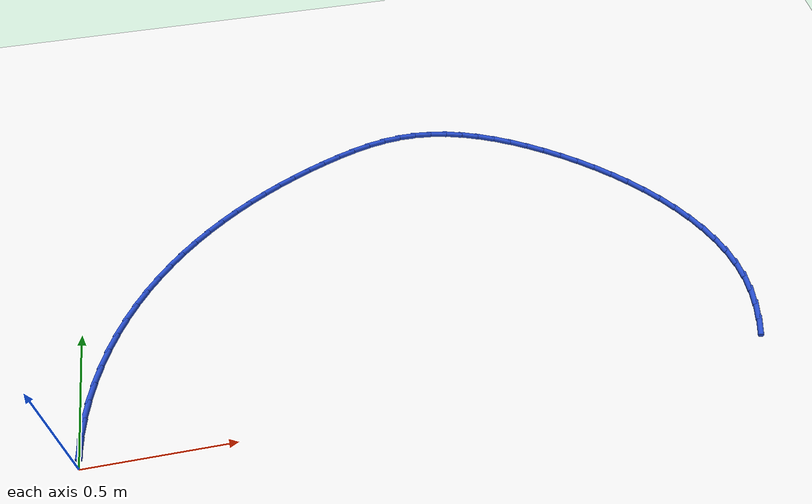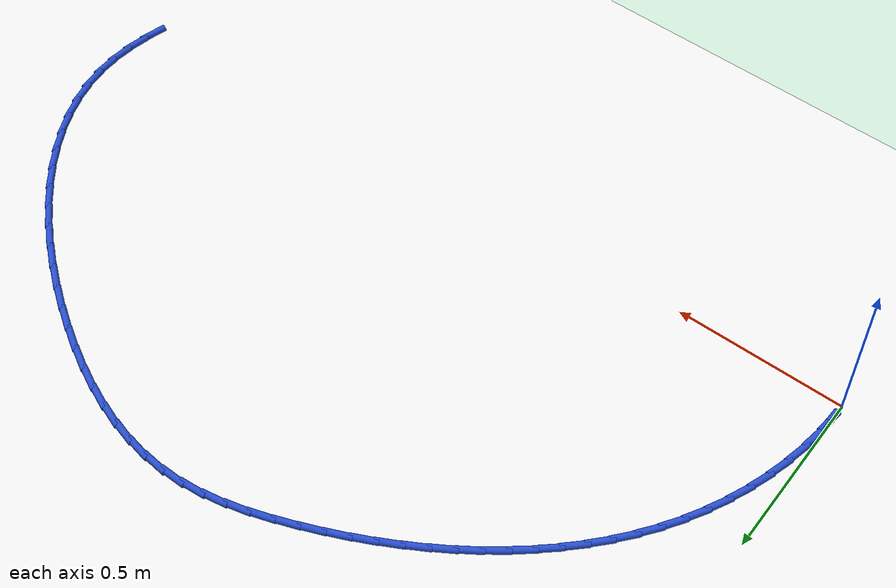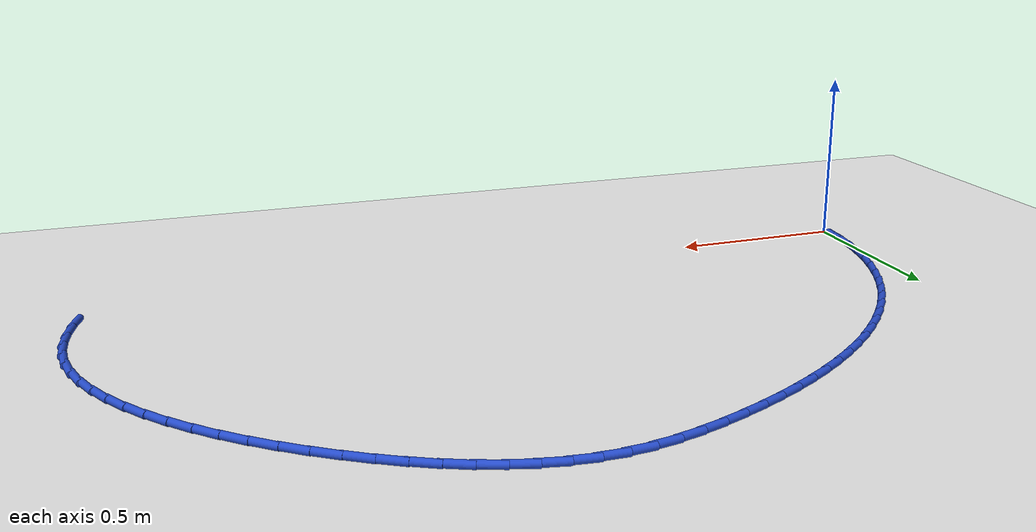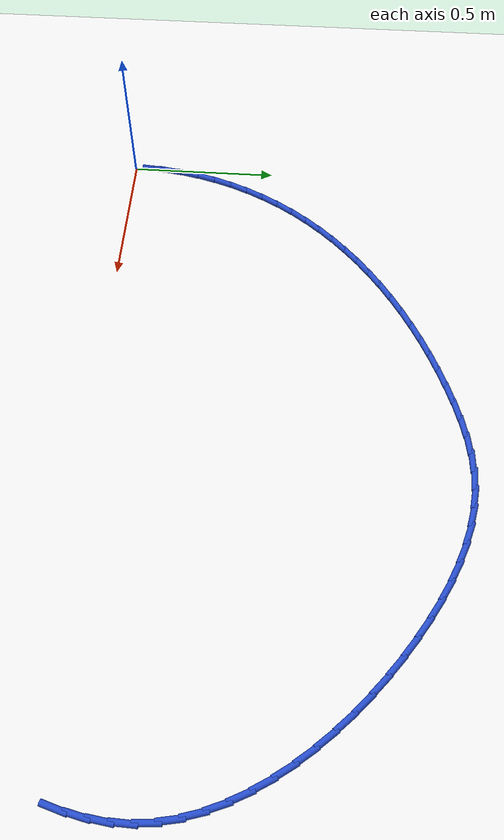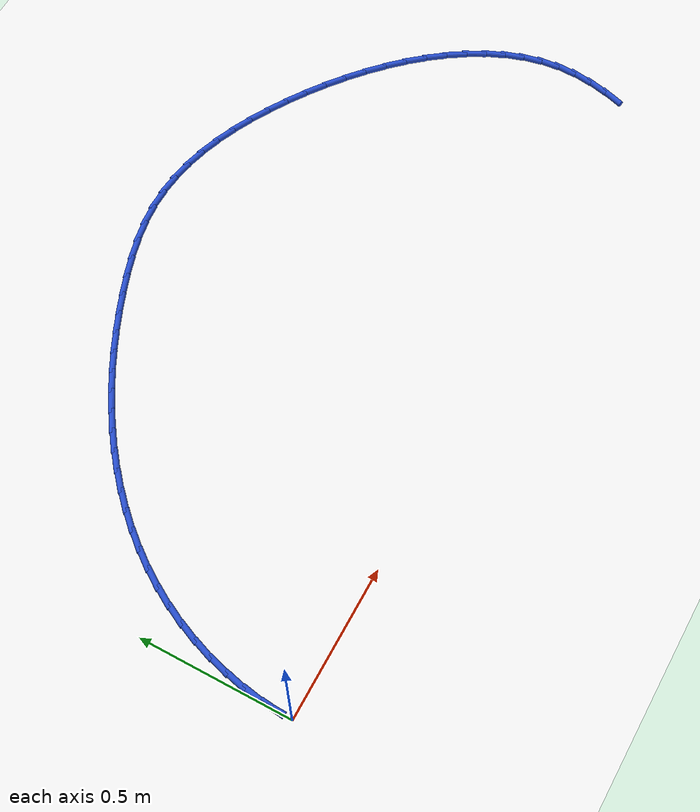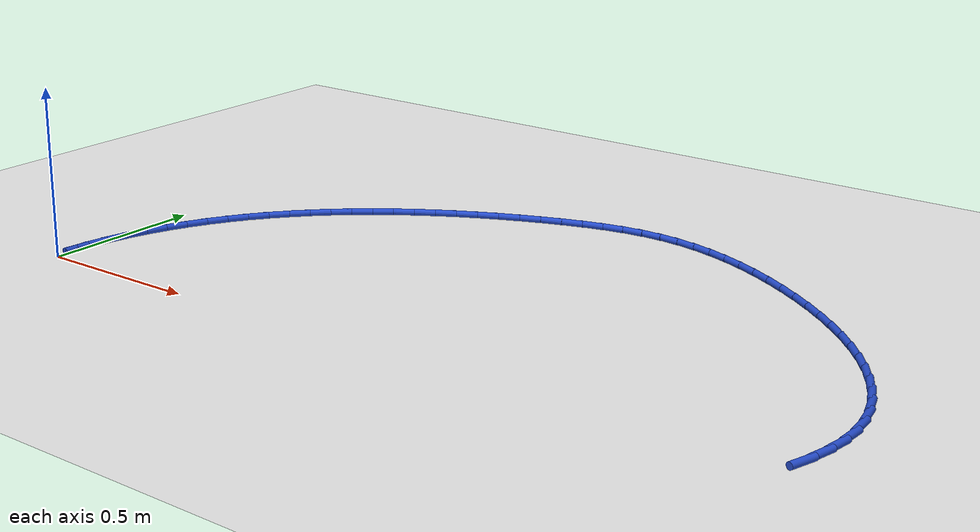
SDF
<sdf version="1.6">
 <world name="default">
  <model name="ground_plane">
   <static>1</static>
   <link name="link">
    <collision name="collision">
     <geometry><plane><normal>0 0 1</normal><size>100 100</size></plane></geometry>
     <surface><friction><ode><mu>100</mu><mu2>50</mu2></ode></friction></surface>
    </collision>
    <visual name="visual">
     <cast_shadows>0</cast_shadows>
     <geometry><plane><normal>0 0 1</normal><size>100 100</size></plane></geometry>
     <material>
      <script><uri>file://media/materials/scripts/gazebo.material</uri><name>Gazebo/WhiteGlow</name></script>
     </material>
    </visual>
   </link>
  </model>
  <model name="line">
   <link name="link_1">
    <pose>0.002664830636860857 0.06560863453543575 0.01 0 1.57 1.463603595961363</pose>
    <collision name="collision">
     <geometry><cylinder><radius>0.01</radius><length>0.08</length></cylinder></geometry>
    </collision>
    <visual name="visual">
     <material>
      <script><name>Gazebo/Blue</name><uri>file://media/materials/scripts/gazebo.material</uri></script>
     </material>
     <geometry><cylinder><radius>0.01</radius><length>0.08</length></cylinder></geometry>
    </visual>
   </link>
   <link name="link_2">
    <pose>0.009674675906237372 0.13075275635183564 0.01 0 1.57 1.3986969720841846</pose>
    <collision name="collision">
     <geometry><cylinder><radius>0.01</radius><length>0.08</length></cylinder></geometry>
    </collision>
    <visual name="visual">
     <material>
      <script><name>Gazebo/Blue</name><uri>file://media/materials/scripts/gazebo.material</uri></script>
     </material>
     <geometry><cylinder><radius>0.01</radius><length>0.08</length></cylinder></geometry>
    </visual>
   </link>
   <link name="link_3">
    <pose>0.0208782051164014 0.19520797058835296 0.01 0 1.57 1.3353134936091782</pose>
    <collision name="collision">
     <geometry><cylinder><radius>0.01</radius><length>0.08</length></cylinder></geometry>
    </collision>
    <visual name="visual">
     <material>
      <script><name>Gazebo/Blue</name><uri>file://media/materials/scripts/gazebo.material</uri></script>
     </material>
     <geometry><cylinder><radius>0.01</radius><length>0.08</length></cylinder></geometry>
    </visual>
   </link>
   <link name="link_4">
    <pose>0.036124087575624804 0.25874988238414093 0.01 0 1.57 1.2732402767615996</pose>
    <collision name="collision">
     <geometry><cylinder><radius>0.01</radius><length>0.08</length></cylinder></geometry>
    </collision>
    <visual name="visual">
     <material>
      <script><name>Gazebo/Blue</name><uri>file://media/materials/scripts/gazebo.material</uri></script>
     </material>
     <geometry><cylinder><radius>0.01</radius><length>0.08</length></cylinder></geometry>
    </visual>
   </link>
   <link name="link_5">
    <pose>0.05526099259217948 0.32115409687835267 0.01 0 1.57 1.212229603945948</pose>
    <collision name="collision">
     <geometry><cylinder><radius>0.01</radius><length>0.08</length></cylinder></geometry>
    </collision>
    <visual name="visual">
     <material>
      <script><name>Gazebo/Blue</name><uri>file://media/materials/scripts/gazebo.material</uri></script>
     </material>
     <geometry><cylinder><radius>0.01</radius><length>0.08</length></cylinder></geometry>
    </visual>
   </link>
   <link name="link_6">
    <pose>0.07813758947433724 0.3821962192101413 0.01 0 1.57 1.1520070931327182</pose>
    <collision name="collision">
     <geometry><cylinder><radius>0.01</radius><length>0.08</length></cylinder></geometry>
    </collision>
    <visual name="visual">
     <material>
      <script><name>Gazebo/Blue</name><uri>file://media/materials/scripts/gazebo.material</uri></script>
     </material>
     <geometry><cylinder><radius>0.01</radius><length>0.08</length></cylinder></geometry>
    </visual>
   </link>
   <link name="link_7">
    <pose>0.10460254753037009 0.4416518545186601 0.01 0 1.57 1.092278256634928</pose>
    <collision name="collision">
     <geometry><cylinder><radius>0.01</radius><length>0.08</length></cylinder></geometry>
    </collision>
    <visual name="visual">
     <material>
      <script><name>Gazebo/Blue</name><uri>file://media/materials/scripts/gazebo.material</uri></script>
     </material>
     <geometry><cylinder><radius>0.01</radius><length>0.08</length></cylinder></geometry>
    </visual>
   </link>
   <link name="link_8">
    <pose>0.1345045360685498 0.4992966079430623 0.01 0 1.57 1.032740196758726</pose>
    <collision name="collision">
     <geometry><cylinder><radius>0.01</radius><length>0.08</length></cylinder></geometry>
    </collision>
    <visual name="visual">
     <material>
      <script><name>Gazebo/Blue</name><uri>file://media/materials/scripts/gazebo.material</uri></script>
     </material>
     <geometry><cylinder><radius>0.01</radius><length>0.08</length></cylinder></geometry>
    </visual>
   </link>
   <link name="link_9">
    <pose>0.1676921561001764 0.5549067889270823 0.01 0 1.57 0.9738422385044967</pose>
    <collision name="collision">
     <geometry><cylinder><radius>0.01</radius><length>0.08</length></cylinder></geometry>
    </collision>
    <visual name="visual">
     <material>
      <script><name>Gazebo/Blue</name><uri>file://media/materials/scripts/gazebo.material</uri></script>
     </material>
     <geometry><cylinder><radius>0.01</radius><length>0.08</length></cylinder></geometry>
    </visual>
   </link>
   <link name="link_10">
    <pose>0.2040065282396846 0.608335847637398 0.01 0 1.57 0.9169751898087074</pose>
    <collision name="collision">
     <geometry><cylinder><radius>0.01</radius><length>0.08</length></cylinder></geometry>
    </collision>
    <visual name="visual">
     <material>
      <script><name>Gazebo/Blue</name><uri>file://media/materials/scripts/gazebo.material</uri></script>
     </material>
     <geometry><cylinder><radius>0.01</radius><length>0.08</length></cylinder></geometry>
    </visual>
   </link>
   <link name="link_11">
    <pose>0.24327464850242772 0.6595828925264681 0.01 0 1.57 0.8624230974952678</pose>
    <collision name="collision">
     <geometry><cylinder><radius>0.01</radius><length>0.08</length></cylinder></geometry>
    </collision>
    <visual name="visual">
     <material>
      <script><name>Gazebo/Blue</name><uri>file://media/materials/scripts/gazebo.material</uri></script>
     </material>
     <geometry><cylinder><radius>0.01</radius><length>0.08</length></cylinder></geometry>
    </visual>
   </link>
   <link name="link_12">
    <pose>0.28532194500066416 0.7086632008651247 0.01 0 1.57 0.8102557805259049</pose>
    <collision name="collision">
     <geometry><cylinder><radius>0.01</radius><length>0.08</length></cylinder></geometry>
    </collision>
    <visual name="visual">
     <material>
      <script><name>Gazebo/Blue</name><uri>file://media/materials/scripts/gazebo.material</uri></script>
     </material>
     <geometry><cylinder><radius>0.01</radius><length>0.08</length></cylinder></geometry>
    </visual>
   </link>
   <link name="link_13">
    <pose>0.3299738458466519 0.7555920499242 0.01 0 1.57 0.7604860261669965</pose>
    <collision name="collision">
     <geometry><cylinder><radius>0.01</radius><length>0.08</length></cylinder></geometry>
    </collision>
    <visual name="visual">
     <material>
      <script><name>Gazebo/Blue</name><uri>file://media/materials/scripts/gazebo.material</uri></script>
     </material>
     <geometry><cylinder><radius>0.01</radius><length>0.08</length></cylinder></geometry>
    </visual>
   </link>
   <link name="link_14">
    <pose>0.37705577915264915 0.800384716974526 0.01 0 1.57 0.7130791975791713</pose>
    <collision name="collision">
     <geometry><cylinder><radius>0.01</radius><length>0.08</length></cylinder></geometry>
    </collision>
    <visual name="visual">
     <material>
      <script><name>Gazebo/Blue</name><uri>file://media/materials/scripts/gazebo.material</uri></script>
     </material>
     <geometry><cylinder><radius>0.01</radius><length>0.08</length></cylinder></geometry>
    </visual>
   </link>
   <link name="link_15">
    <pose>0.4263931730309146 0.8430564792869353 0.01 0 1.57 0.6679628996554383</pose>
    <collision name="collision">
     <geometry><cylinder><radius>0.01</radius><length>0.08</length></cylinder></geometry>
    </collision>
    <visual name="visual">
     <material>
      <script><name>Gazebo/Blue</name><uri>file://media/materials/scripts/gazebo.material</uri></script>
     </material>
     <geometry><cylinder><radius>0.01</radius><length>0.08</length></cylinder></geometry>
    </visual>
   </link>
   <link name="link_16">
    <pose>0.47781145559370597 0.8836226141322594 0.01 0 1.57 0.6250359612132763</pose>
    <collision name="collision">
     <geometry><cylinder><radius>0.01</radius><length>0.08</length></cylinder></geometry>
    </collision>
    <visual name="visual">
     <material>
      <script><name>Gazebo/Blue</name><uri>file://media/materials/scripts/gazebo.material</uri></script>
     </material>
     <geometry><cylinder><radius>0.01</radius><length>0.08</length></cylinder></geometry>
    </visual>
   </link>
   <link name="link_17">
    <pose>0.5311360549532816 0.9220983987813307 0.01 0 1.57 0.5841762927654706</pose>
    <collision name="collision">
     <geometry><cylinder><radius>0.01</radius><length>0.08</length></cylinder></geometry>
    </collision>
    <visual name="visual">
     <material>
      <script><name>Gazebo/Blue</name><uri>file://media/materials/scripts/gazebo.material</uri></script>
     </material>
     <geometry><cylinder><radius>0.01</radius><length>0.08</length></cylinder></geometry>
    </visual>
   </link>
   <link name="link_18">
    <pose>0.5861923992218998 0.958499110504981 0.01 0 1.57 0.545247422198265</pose>
    <collision name="collision">
     <geometry><cylinder><radius>0.01</radius><length>0.08</length></cylinder></geometry>
    </collision>
    <visual name="visual">
     <material>
      <script><name>Gazebo/Blue</name><uri>file://media/materials/scripts/gazebo.material</uri></script>
     </material>
     <geometry><cylinder><radius>0.01</radius><length>0.08</length></cylinder></geometry>
    </visual>
   </link>
   <link name="link_19">
    <pose>0.6428059165118187 0.9928400265740428 0.01 0 1.57 0.508103683673926</pose>
    <collision name="collision">
     <geometry><cylinder><radius>0.01</radius><length>0.08</length></cylinder></geometry>
    </collision>
    <visual name="visual">
     <material>
      <script><name>Gazebo/Blue</name><uri>file://media/materials/scripts/gazebo.material</uri></script>
     </material>
     <geometry><cylinder><radius>0.01</radius><length>0.08</length></cylinder></geometry>
    </visual>
   </link>
   <link name="link_20">
    <pose>0.7008020349352966 1.025136424259348 0.01 0 1.57 0.47259414300596353</pose>
    <collision name="collision">
     <geometry><cylinder><radius>0.01</radius><length>0.08</length></cylinder></geometry>
    </collision>
    <visual name="visual">
     <material>
      <script><name>Gazebo/Blue</name><uri>file://media/materials/scripts/gazebo.material</uri></script>
     </material>
     <geometry><cylinder><radius>0.01</radius><length>0.08</length></cylinder></geometry>
    </visual>
   </link>
   <link name="link_21">
    <pose>0.7600061826045913 1.0554035808317286 0.01 0 1.57 0.4385653987040961</pose>
    <collision name="collision">
     <geometry><cylinder><radius>0.01</radius><length>0.08</length></cylinder></geometry>
    </collision>
    <visual name="visual">
     <material>
      <script><name>Gazebo/Blue</name><uri>file://media/materials/scripts/gazebo.material</uri></script>
     </material>
     <geometry><cylinder><radius>0.01</radius><length>0.08</length></cylinder></geometry>
    </visual>
   </link>
   <link name="link_22">
    <pose>0.8202437876319616 1.0836567735620168 0.01 0 1.57 0.4058634166530226</pose>
    <collision name="collision">
     <geometry><cylinder><radius>0.01</radius><length>0.08</length></cylinder></geometry>
    </collision>
    <visual name="visual">
     <material>
      <script><name>Gazebo/Blue</name><uri>file://media/materials/scripts/gazebo.material</uri></script>
     </material>
     <geometry><cylinder><radius>0.01</radius><length>0.08</length></cylinder></geometry>
    </visual>
   </link>
   <link name="link_23">
    <pose>0.8813402781296653 1.1099112797210444 0.01 0 1.57 0.3743006564137442</pose>
    <collision name="collision">
     <geometry><cylinder><radius>0.01</radius><length>0.08</length></cylinder></geometry>
    </collision>
    <visual name="visual">
     <material>
      <script><name>Gazebo/Blue</name><uri>file://media/materials/scripts/gazebo.material</uri></script>
     </material>
     <geometry><cylinder><radius>0.01</radius><length>0.08</length></cylinder></geometry>
    </visual>
   </link>
   <link name="link_24">
    <pose>0.9431211560798088 1.134179988401863 0.01 0 1.57 0.3397028711412814</pose>
    <collision name="collision">
     <geometry><cylinder><radius>0.01</radius><length>0.08</length></cylinder></geometry>
    </collision>
    <visual name="visual">
     <material>
      <script><name>Gazebo/Blue</name><uri>file://media/materials/scripts/gazebo.material</uri></script>
     </material>
     <geometry><cylinder><radius>0.01</radius><length>0.08</length></cylinder></geometry>
    </visual>
   </link>
   <link name="link_25">
    <pose>1.0054205542940364 1.1561967579980343 0.01 0 1.57 0.29381849330018933</pose>
    <collision name="collision">
     <geometry><cylinder><radius>0.01</radius><length>0.08</length></cylinder></geometry>
    </collision>
    <visual name="visual">
     <material>
      <script><name>Gazebo/Blue</name><uri>file://media/materials/scripts/gazebo.material</uri></script>
     </material>
     <geometry><cylinder><radius>0.01</radius><length>0.08</length></cylinder></geometry>
    </visual>
   </link>
   <link name="link_26">
    <pose>1.0680892050839985 1.175158792798517 0.01 0 1.57 0.23479085339214625</pose>
    <collision name="collision">
     <geometry><cylinder><radius>0.01</radius><length>0.08</length></cylinder></geometry>
    </collision>
    <visual name="visual">
     <material>
      <script><name>Gazebo/Blue</name><uri>file://media/materials/scripts/gazebo.material</uri></script>
     </material>
     <geometry><cylinder><radius>0.01</radius><length>0.08</length></cylinder></geometry>
    </visual>
   </link>
   <link name="link_27">
    <pose>1.1309797254043743 1.1902023674608235 0.01 0 1.57 0.16154950066454868</pose>
    <collision name="collision">
     <geometry><cylinder><radius>0.01</radius><length>0.08</length></cylinder></geometry>
    </collision>
    <visual name="visual">
     <material>
      <script><name>Gazebo/Blue</name><uri>file://media/materials/scripts/gazebo.material</uri></script>
     </material>
     <geometry><cylinder><radius>0.01</radius><length>0.08</length></cylinder></geometry>
    </visual>
   </link>
   <link name="link_28">
    <pose>1.193944732209844 1.2004637566424667 0.01 0 1.57 0.07326645775920984</pose>
    <collision name="collision">
     <geometry><cylinder><radius>0.01</radius><length>0.08</length></cylinder></geometry>
    </collision>
    <visual name="visual">
     <material>
      <script><name>Gazebo/Blue</name><uri>file://media/materials/scripts/gazebo.material</uri></script>
     </material>
     <geometry><cylinder><radius>0.01</radius><length>0.08</length></cylinder></geometry>
    </visual>
   </link>
   <link name="link_29">
    <pose>1.256836892765767 1.2050799052128676 0.01 0 1.57 -0.025104043558374714</pose>
    <collision name="collision">
     <geometry><cylinder><radius>0.01</radius><length>0.08</length></cylinder></geometry>
    </collision>
    <visual name="visual">
     <material>
      <script><name>Gazebo/Blue</name><uri>file://media/materials/scripts/gazebo.material</uri></script>
     </material>
     <geometry><cylinder><radius>0.01</radius><length>0.08</length></cylinder></geometry>
    </visual>
   </link>
   <link name="link_30">
    <pose>1.3195327378726525 1.2035056552682184 0.01 0 1.57 -0.11930310190052369</pose>
    <collision name="collision">
     <geometry><cylinder><radius>0.01</radius><length>0.08</length></cylinder></geometry>
    </collision>
    <visual name="visual">
     <material>
      <script><name>Gazebo/Blue</name><uri>file://media/materials/scripts/gazebo.material</uri></script>
     </material>
     <geometry><cylinder><radius>0.01</radius><length>0.08</length></cylinder></geometry>
    </visual>
   </link>
   <link name="link_31">
    <pose>1.3819707445831908 1.1960210636791644 0.01 0 1.57 -0.20600093775272743</pose>
    <collision name="collision">
     <geometry><cylinder><radius>0.01</radius><length>0.08</length></cylinder></geometry>
    </collision>
    <visual name="visual">
     <material>
      <script><name>Gazebo/Blue</name><uri>file://media/materials/scripts/gazebo.material</uri></script>
     </material>
     <geometry><cylinder><radius>0.01</radius><length>0.08</length></cylinder></geometry>
    </visual>
   </link>
   <link name="link_32">
    <pose>1.4440993111774065 1.1830383525900918 0.01 0 1.57 -0.28458591008200207</pose>
    <collision name="collision">
     <geometry><cylinder><radius>0.01</radius><length>0.08</length></cylinder></geometry>
    </collision>
    <visual name="visual">
     <material>
      <script><name>Gazebo/Blue</name><uri>file://media/materials/scripts/gazebo.material</uri></script>
     </material>
     <geometry><cylinder><radius>0.01</radius><length>0.08</length></cylinder></geometry>
    </visual>
   </link>
   <link name="link_33">
    <pose>1.5058668359353233 1.1649697441453857 0.01 0 1.57 -0.3549672472721766</pose>
    <collision name="collision">
     <geometry><cylinder><radius>0.01</radius><length>0.08</length></cylinder></geometry>
    </collision>
    <visual name="visual">
     <material>
      <script><name>Gazebo/Blue</name><uri>file://media/materials/scripts/gazebo.material</uri></script>
     </material>
     <geometry><cylinder><radius>0.01</radius><length>0.08</length></cylinder></geometry>
    </visual>
   </link>
   <link name="link_34">
    <pose>1.5672217171369651 1.1422274604894318 0.01 0 1.57 -0.4174180973318234</pose>
    <collision name="collision">
     <geometry><cylinder><radius>0.01</radius><length>0.08</length></cylinder></geometry>
    </collision>
    <visual name="visual">
     <material>
      <script><name>Gazebo/Blue</name><uri>file://media/materials/scripts/gazebo.material</uri></script>
     </material>
     <geometry><cylinder><radius>0.01</radius><length>0.08</length></cylinder></geometry>
    </visual>
   </link>
   <link name="link_35">
    <pose>1.6281123530623556 1.1152237237666158 0.01 0 1.57 -0.4724278847498682</pose>
    <collision name="collision">
     <geometry><cylinder><radius>0.01</radius><length>0.08</length></cylinder></geometry>
    </collision>
    <visual name="visual">
     <material>
      <script><name>Gazebo/Blue</name><uri>file://media/materials/scripts/gazebo.material</uri></script>
     </material>
     <geometry><cylinder><radius>0.01</radius><length>0.08</length></cylinder></geometry>
    </visual>
   </link>
   <link name="link_36">
    <pose>1.6884871419915197 1.0843707561213236 0.01 0 1.57 -0.5205863037080659</pose>
    <collision name="collision">
     <geometry><cylinder><radius>0.01</radius><length>0.08</length></cylinder></geometry>
    </collision>
    <visual name="visual">
     <material>
      <script><name>Gazebo/Blue</name><uri>file://media/materials/scripts/gazebo.material</uri></script>
     </material>
     <geometry><cylinder><radius>0.01</radius><length>0.08</length></cylinder></geometry>
    </visual>
   </link>
   <link name="link_37">
    <pose>1.7482944822044801 1.0500807796979401 0.01 0 1.57 -0.5627369350321018</pose>
    <collision name="collision">
     <geometry><cylinder><radius>0.01</radius><length>0.08</length></cylinder></geometry>
    </collision>
    <visual name="visual">
     <material>
      <script><name>Gazebo/Blue</name><uri>file://media/materials/scripts/gazebo.material</uri></script>
     </material>
     <geometry><cylinder><radius>0.01</radius><length>0.08</length></cylinder></geometry>
    </visual>
   </link>
   <link name="link_38">
    <pose>1.8074668219810217 1.0127567122538395 0.01 0 1.57 -0.6027705781776781</pose>
    <collision name="collision">
     <geometry><cylinder><radius>0.01</radius><length>0.08</length></cylinder></geometry>
    </collision>
    <visual name="visual">
     <material>
      <script><name>Gazebo/Blue</name><uri>file://media/materials/scripts/gazebo.material</uri></script>
     </material>
     <geometry><cylinder><radius>0.01</radius><length>0.08</length></cylinder></geometry>
    </visual>
   </link>
   <link name="link_39">
    <pose>1.8657129776347718 0.972671016478683 0.01 0 1.57 -0.6437596375992064</pose>
    <collision name="collision">
     <geometry><cylinder><radius>0.01</radius><length>0.08</length></cylinder></geometry>
    </collision>
    <visual name="visual">
     <material>
      <script><name>Gazebo/Blue</name><uri>file://media/materials/scripts/gazebo.material</uri></script>
     </material>
     <geometry><cylinder><radius>0.01</radius><length>0.08</length></cylinder></geometry>
    </visual>
   </link>
   <link name="link_40">
    <pose>1.9225769890271813 0.930000033190131 0.01 0 1.57 -0.6864270198327452</pose>
    <collision name="collision">
     <geometry><cylinder><radius>0.01</radius><length>0.08</length></cylinder></geometry>
    </collision>
    <visual name="visual">
     <material>
      <script><name>Gazebo/Blue</name><uri>file://media/materials/scripts/gazebo.material</uri></script>
     </material>
     <geometry><cylinder><radius>0.01</radius><length>0.08</length></cylinder></geometry>
    </visual>
   </link>
   <link name="link_41">
    <pose>1.9775990623881896 0.8849178668678696 0.01 0 1.57 -0.7314609352297243</pose>
    <collision name="collision">
     <geometry><cylinder><radius>0.01</radius><length>0.08</length></cylinder></geometry>
    </collision>
    <visual name="visual">
     <material>
      <script><name>Gazebo/Blue</name><uri>file://media/materials/scripts/gazebo.material</uri></script>
     </material>
     <geometry><cylinder><radius>0.01</radius><length>0.08</length></cylinder></geometry>
    </visual>
   </link>
   <link name="link_42">
    <pose>2.0303194039477366 0.8375986219915829 0.01 0 1.57 -0.7795940104318003</pose>
    <collision name="collision">
     <geometry><cylinder><radius>0.01</radius><length>0.08</length></cylinder></geometry>
    </collision>
    <visual name="visual">
     <material>
      <script><name>Gazebo/Blue</name><uri>file://media/materials/scripts/gazebo.material</uri></script>
     </material>
     <geometry><cylinder><radius>0.01</radius><length>0.08</length></cylinder></geometry>
    </visual>
   </link>
   <link name="link_43">
    <pose>2.0802782199357632 0.7882164030409576 0.01 0 1.57 -0.831622302827571</pose>
    <collision name="collision">
     <geometry><cylinder><radius>0.01</radius><length>0.08</length></cylinder></geometry>
    </collision>
    <visual name="visual">
     <material>
      <script><name>Gazebo/Blue</name><uri>file://media/materials/scripts/gazebo.material</uri></script>
     </material>
     <geometry><cylinder><radius>0.01</radius><length>0.08</length></cylinder></geometry>
    </visual>
   </link>
   <link name="link_44">
    <pose>2.127015716582208 0.7369453144956786 0.01 0 1.57 -0.8884186432754717</pose>
    <collision name="collision">
     <geometry><cylinder><radius>0.01</radius><length>0.08</length></cylinder></geometry>
    </collision>
    <visual name="visual">
     <material>
      <script><name>Gazebo/Blue</name><uri>file://media/materials/scripts/gazebo.material</uri></script>
     </material>
     <geometry><cylinder><radius>0.01</radius><length>0.08</length></cylinder></geometry>
    </visual>
   </link>
   <link name="link_45">
    <pose>2.1700721001170122 0.6839594608354317 0.01 0 1.57 -0.9509359598446969</pose>
    <collision name="collision">
     <geometry><cylinder><radius>0.01</radius><length>0.08</length></cylinder></geometry>
    </collision>
    <visual name="visual">
     <material>
      <script><name>Gazebo/Blue</name><uri>file://media/materials/scripts/gazebo.material</uri></script>
     </material>
     <geometry><cylinder><radius>0.01</radius><length>0.08</length></cylinder></geometry>
    </visual>
   </link>
   <link name="link_46">
    <pose>2.208987576770115 0.6294329465399024 0.01 0 1.57 -1.0201926334857148</pose>
    <collision name="collision">
     <geometry><cylinder><radius>0.01</radius><length>0.08</length></cylinder></geometry>
    </collision>
    <visual name="visual">
     <material>
      <script><name>Gazebo/Blue</name><uri>file://media/materials/scripts/gazebo.material</uri></script>
     </material>
     <geometry><cylinder><radius>0.01</radius><length>0.08</length></cylinder></geometry>
    </visual>
   </link>
   <link name="link_47">
    <pose>2.2433023527714564 0.5735398760887763 0.01 0 1.57 -1.0972272180134315</pose>
    <collision name="collision">
     <geometry><cylinder><radius>0.01</radius><length>0.08</length></cylinder></geometry>
    </collision>
    <visual name="visual">
     <material>
      <script><name>Gazebo/Blue</name><uri>file://media/materials/scripts/gazebo.material</uri></script>
     </material>
     <geometry><cylinder><radius>0.01</radius><length>0.08</length></cylinder></geometry>
    </visual>
   </link>
   <link name="link_48">
    <pose>2.2725566343509764 0.5164543539617389 0.01 0 1.57 -1.1830051064582099</pose>
    <collision name="collision">
     <geometry><cylinder><radius>0.01</radius><length>0.08</length></cylinder></geometry>
    </collision>
    <visual name="visual">
     <material>
      <script><name>Gazebo/Blue</name><uri>file://media/materials/scripts/gazebo.material</uri></script>
     </material>
     <geometry><cylinder><radius>0.01</radius><length>0.08</length></cylinder></geometry>
    </visual>
   </link>
   <link name="link_49">
    <pose>2.2962906277386153 0.45835048463847566 0.01 0 1.57 -1.2782585745718018</pose>
    <collision name="collision">
     <geometry><cylinder><radius>0.01</radius><length>0.08</length></cylinder></geometry>
    </collision>
    <visual name="visual">
     <material>
      <script><name>Gazebo/Blue</name><uri>file://media/materials/scripts/gazebo.material</uri></script>
     </material>
     <geometry><cylinder><radius>0.01</radius><length>0.08</length></cylinder></geometry>
    </visual>
   </link>
   <link name="link_50">
    <pose>2.3140445391643123 0.3994023725986722 0.01 0 1.57 -1.3832518371633953</pose>
    <collision name="collision">
     <geometry><cylinder><radius>0.01</radius><length>0.08</length></cylinder></geometry>
    </collision>
    <visual name="visual">
     <material>
      <script><name>Gazebo/Blue</name><uri>file://media/materials/scripts/gazebo.material</uri></script>
     </material>
     <geometry><cylinder><radius>0.01</radius><length>0.08</length></cylinder></geometry>
    </visual>
   </link>
   <link name="link_51">
    <pose>2.325358574858009 0.33978412232201394 0.01 0 1.57 -1.4974872633299652</pose>
    <collision name="collision">
     <geometry><cylinder><radius>0.01</radius><length>0.08</length></cylinder></geometry>
    </collision>
    <visual name="visual">
     <material>
      <script><name>Gazebo/Blue</name><uri>file://media/materials/scripts/gazebo.material</uri></script>
     </material>
     <geometry><cylinder><radius>0.01</radius><length>0.08</length></cylinder></geometry>
    </visual>
   </link>
   <link name="link_52">
    <pose>2.3297734121133202 0.2796697865918833 0.01 0 1.57 1.5274759014424908</pose>
    <collision name="collision">
     <geometry><cylinder><radius>0.01</radius><length>0.08</length></cylinder></geometry>
    </collision>
    <visual name="visual">
     <material>
      <script><name>Gazebo/Blue</name><uri>file://media/materials/scripts/gazebo.material</uri></script>
     </material>
     <geometry><cylinder><radius>0.01</radius><length>0.08</length></cylinder></geometry>
    </visual>
   </link>
   <link name="link_53">
    <pose>2.327152110307119 0.2191980387668636 0.01 0 1.57 1.4252450948535023</pose>
    <collision name="collision">
     <geometry><cylinder><radius>0.01</radius><length>0.08</length></cylinder></geometry>
    </collision>
    <visual name="visual">
     <material>
      <script><name>Gazebo/Blue</name><uri>file://media/materials/scripts/gazebo.material</uri></script>
     </material>
     <geometry><cylinder><radius>0.01</radius><length>0.08</length></cylinder></geometry>
    </visual>
   </link>
   <link name="link_54">
    <pose>2.3182414059908663 0.1584105741420269 0.01 0 1.57 1.3407604271068634</pose>
    <collision name="collision">
     <geometry><cylinder><radius>0.01</radius><length>0.08</length></cylinder></geometry>
    </collision>
    <visual name="visual">
     <material>
      <script><name>Gazebo/Blue</name><uri>file://media/materials/scripts/gazebo.material</uri></script>
     </material>
     <geometry><cylinder><radius>0.01</radius><length>0.08</length></cylinder></geometry>
    </visual>
   </link>
   <link name="link_55">
    <pose>2.3039380955072106 0.09733261988542022 0.01 0 1.57 1.2734253309152346</pose>
    <collision name="collision">
     <geometry><cylinder><radius>0.01</radius><length>0.08</length></cylinder></geometry>
    </collision>
    <visual name="visual">
     <material>
      <script><name>Gazebo/Blue</name><uri>file://media/materials/scripts/gazebo.material</uri></script>
     </material>
     <geometry><cylinder><radius>0.01</radius><length>0.08</length></cylinder></geometry>
    </visual>
   </link>
   <link name="link_111">
    <pose>0.0027037040636890414 0.06558116023378904 0.01 0 1.57 1.5295928191328014</pose>
    <collision name="collision">
     <geometry><cylinder><radius>0.01</radius><length>0.08</length></cylinder></geometry>
    </collision>
    <visual name="visual">
     <material>
      <script><name>Gazebo/Blue</name><uri>file://media/materials/scripts/gazebo.material</uri></script>
     </material>
     <geometry><cylinder><radius>0.01</radius><length>0.08</length></cylinder></geometry>
    </visual>
   </link>
  </model>
 </world>
</sdf>
